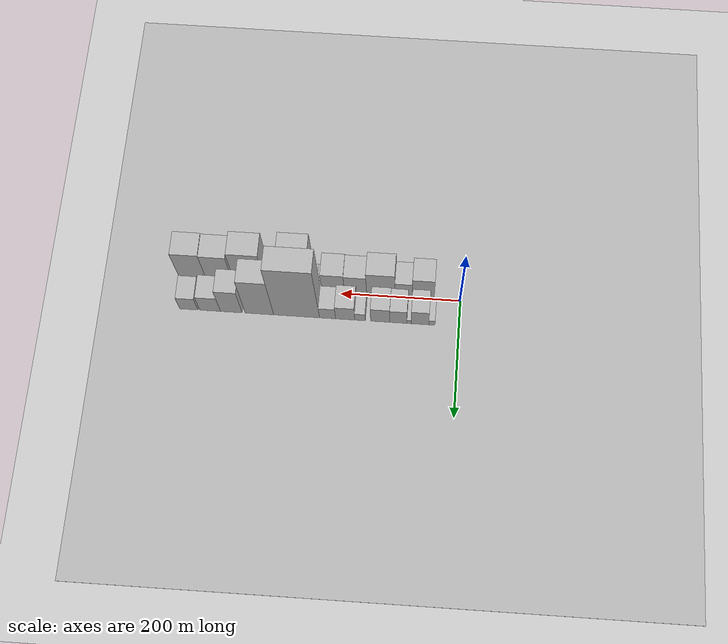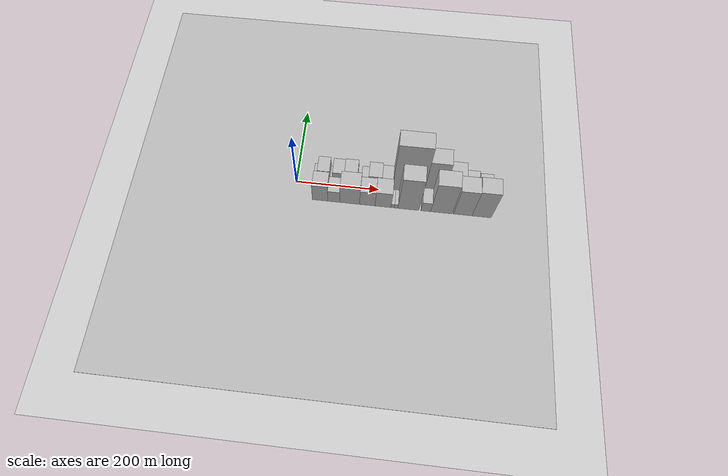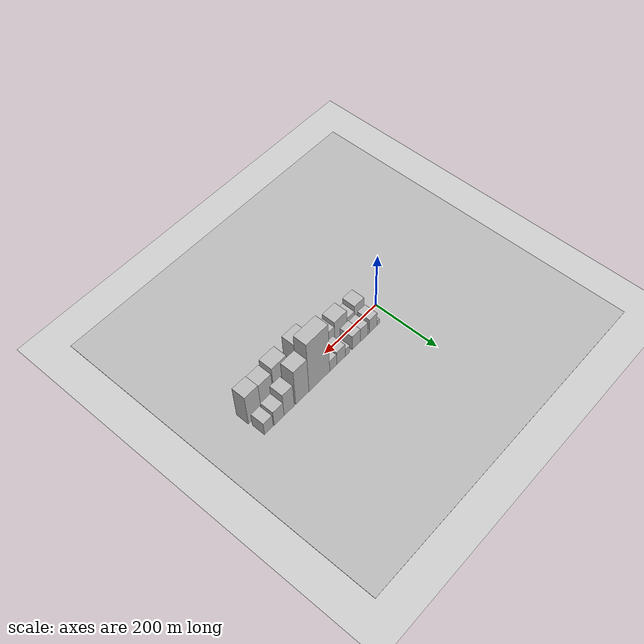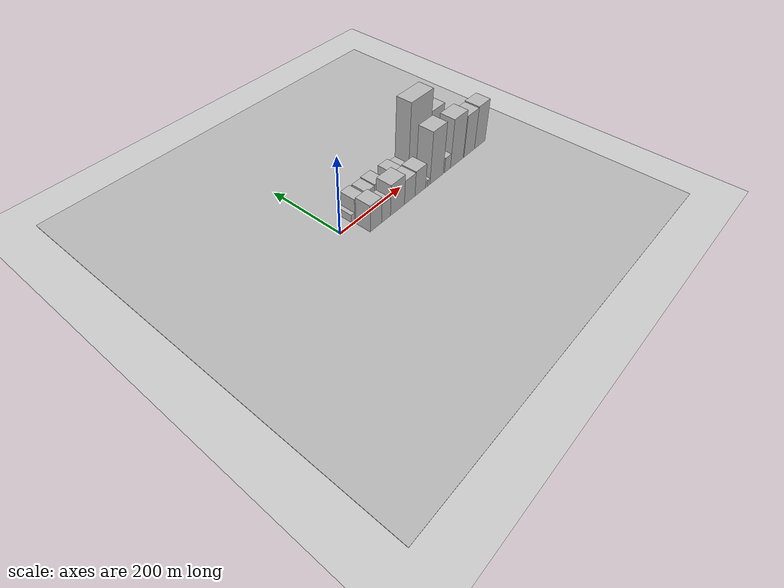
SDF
<?xml version="1.0" encoding="utf-8"?>

<sdf version="1.6">

   <world name="default">

      <gui fullscreen="0">

         <camera name="user_camera">

            <pose>-15 0 4.57585 0 0 0</pose>

            <view_controller>orbit</view_controller>

         </camera>

      </gui>

      <scene>

         <sky>

           <clouds>

             <speed>12</speed>

           </clouds>

         </sky>

         <ambient>0.4 0.4 0.4 1</ambient>

         <background>0.7 0.7 0.7 1</background>

         <shadows>1</shadows>

      </scene>

      <gravity>0 0 -9.8066</gravity>

      <magnetic_field>6e-06 2.3e-05 -4.2e-05</magnetic_field>

      <physics default="0" name="default_physics" type="ode">

         <ode>

            <solver>

               <type>quick</type>

               <iters>10</iters>

               <sor>1.0</sor>

               <use_dynamic_moi_rescaling>0</use_dynamic_moi_rescaling>

            </solver>

            <constraints>

               <cfm>0</cfm>

               <erp>0.2</erp>

               <contact_max_correcting_vel>100</contact_max_correcting_vel>

               <contact_surface_layer>0.001</contact_surface_layer>

            </constraints>

         </ode>

         <max_step_size>0.004</max_step_size>

         <real_time_factor>1</real_time_factor>

         <real_time_update_rate>250</real_time_update_rate>

      </physics>

      <light name="sun" type="directional">

         <cast_shadows>1</cast_shadows>

         <pose>0 0 10 0 0 0</pose>

         <diffuse>0.8 0.8 0.8 1</diffuse>

         <specular>0.2 0.2 0.2 1</specular>

         <attenuation>

            <range>1000</range>

            <constant>0.9</constant>

            <linear>0.01</linear>

            <quadratic>0.001</quadratic>

         </attenuation>

         <direction>-0.5 0.1 -0.9</direction>

      </light>

      <include>

         <name>ground_plane_1</name>

         <uri>model://HANNAS_ground_plane</uri>

         <pose>0 0 0  0 0 0</pose>

      </include>

      <include>

         <name>ground_plane_2</name>

         <uri>model://HANNAS_ground_plane</uri>

         <pose>100 0 0  0 0 0</pose>

      </include>

      <model name="building_1">

         <static>1</static>

         <pose frame="">45.1310 24.5000 0 0.000000 0.000000 1.570796</pose>

         <link name="link">

            <pose frame="">0 0 10.50 0 0 0</pose>

            <collision name="collision">

               <geometry>

                  <box>

                     <size>40.0000 10.2621 21.0000</size>

                  </box>

               </geometry>

               <max_contacts>10</max_contacts>

               <surface>

                  <contact>

                     <ode/>

                  </contact>

                  <bounce/>

                  <friction>

                     <torsional>

                        <ode/>

                     </torsional>

                     <ode/>

                  </friction>

               </surface>

            </collision>

            <visual name="visual">

               <cast_shadows>0</cast_shadows>

               <geometry>

                  <box>

                     <size>40.0000 10.2621 21.0000</size>

                  </box>

               </geometry>

               <material>

                  <script>

                     <uri>model://HANNAS_wall/materials/scripts</uri>

                     <uri>model://HANNAS_wall/materials/textures</uri>

                     <name>vrc/HANNAS_wall</name>

                  </script>

               </material>

            </visual>

            <self_collide>0</self_collide>

            <enable_wind>0</enable_wind>

            <kinematic>0</kinematic>

         </link>

      </model>

      <model name="building_2">

         <static>1</static>

         <pose frame="">64.9373 24.5000 0 0.000000 0.000000 1.570796</pose>

         <link name="link">

            <pose frame="">0 0 28.50 0 0 0</pose>

            <collision name="collision">

               <geometry>

                  <box>

                     <size>40.0000 29.3504 57.0000</size>

                  </box>

               </geometry>

               <max_contacts>10</max_contacts>

               <surface>

                  <contact>

                     <ode/>

                  </contact>

                  <bounce/>

                  <friction>

                     <torsional>

                        <ode/>

                     </torsional>

                     <ode/>

                  </friction>

               </surface>

            </collision>

            <visual name="visual">

               <cast_shadows>0</cast_shadows>

               <geometry>

                  <box>

                     <size>40.0000 29.3504 57.0000</size>

                  </box>

               </geometry>

               <material>

                  <script>

                     <uri>model://HANNAS_wall/materials/scripts</uri>

                     <uri>model://HANNAS_wall/materials/textures</uri>

                     <name>vrc/HANNAS_wall</name>

                  </script>

               </material>

            </visual>

            <self_collide>0</self_collide>

            <enable_wind>0</enable_wind>

            <kinematic>0</kinematic>

         </link>

      </model>

      <model name="building_3">

         <static>1</static>

         <pose frame="">83.1225 24.5000 0 0.000000 0.000000 1.570796</pose>

         <link name="link">

            <pose frame="">0 0 7.50 0 0 0</pose>

            <collision name="collision">

               <geometry>

                  <box>

                     <size>40.0000 7.0201 15.0000</size>

                  </box>

               </geometry>

               <max_contacts>10</max_contacts>

               <surface>

                  <contact>

                     <ode/>

                  </contact>

                  <bounce/>

                  <friction>

                     <torsional>

                        <ode/>

                     </torsional>

                     <ode/>

                  </friction>

               </surface>

            </collision>

            <visual name="visual">

               <cast_shadows>0</cast_shadows>

               <geometry>

                  <box>

                     <size>40.0000 7.0201 15.0000</size>

                  </box>

               </geometry>

               <material>

                  <script>

                     <uri>model://HANNAS_wall/materials/scripts</uri>

                     <uri>model://HANNAS_wall/materials/textures</uri>

                     <name>vrc/HANNAS_wall</name>

                  </script>

               </material>

            </visual>

            <self_collide>0</self_collide>

            <enable_wind>0</enable_wind>

            <kinematic>0</kinematic>

         </link>

      </model>

      <model name="building_4">

         <static>1</static>

         <pose frame="">100.7517 24.5000 0 0.000000 0.000000 1.570796</pose>

         <link name="link">

            <pose frame="">0 0 27.00 0 0 0</pose>

            <collision name="collision">

               <geometry>

                  <box>

                     <size>40.0000 28.2383 54.0000</size>

                  </box>

               </geometry>

               <max_contacts>10</max_contacts>

               <surface>

                  <contact>

                     <ode/>

                  </contact>

                  <bounce/>

                  <friction>

                     <torsional>

                        <ode/>

                     </torsional>

                     <ode/>

                  </friction>

               </surface>

            </collision>

            <visual name="visual">

               <cast_shadows>0</cast_shadows>

               <geometry>

                  <box>

                     <size>40.0000 28.2383 54.0000</size>

                  </box>

               </geometry>

               <material>

                  <script>

                     <uri>model://HANNAS_wall/materials/scripts</uri>

                     <uri>model://HANNAS_wall/materials/textures</uri>

                     <name>vrc/HANNAS_wall</name>

                  </script>

               </material>

            </visual>

            <self_collide>0</self_collide>

            <enable_wind>0</enable_wind>

            <kinematic>0</kinematic>

         </link>

      </model>

      <model name="building_5">

         <static>1</static>

         <pose frame="">130.7815 24.5000 0 0.000000 0.000000 1.570796</pose>

         <link name="link">

            <pose frame="">0 0 28.50 0 0 0</pose>

            <collision name="collision">

               <geometry>

                  <box>

                     <size>40.0000 31.8213 57.0000</size>

                  </box>

               </geometry>

               <max_contacts>10</max_contacts>

               <surface>

                  <contact>

                     <ode/>

                  </contact>

                  <bounce/>

                  <friction>

                     <torsional>

                        <ode/>

                     </torsional>

                     <ode/>

                  </friction>

               </surface>

            </collision>

            <visual name="visual">

               <cast_shadows>0</cast_shadows>

               <geometry>

                  <box>

                     <size>40.0000 31.8213 57.0000</size>

                  </box>

               </geometry>

               <material>

                  <script>

                     <uri>model://HANNAS_wall/materials/scripts</uri>

                     <uri>model://HANNAS_wall/materials/textures</uri>

                     <name>vrc/HANNAS_wall</name>

                  </script>

               </material>

            </visual>

            <self_collide>0</self_collide>

            <enable_wind>0</enable_wind>

            <kinematic>0</kinematic>

         </link>

      </model>

      <model name="building_6">

         <static>1</static>

         <pose frame="">164.3739 24.5000 0 0.000000 0.000000 1.570796</pose>

         <link name="link">

            <pose frame="">0 0 15.00 0 0 0</pose>

            <collision name="collision">

               <geometry>

                  <box>

                     <size>40.0000 17.3635 30.0000</size>

                  </box>

               </geometry>

               <max_contacts>10</max_contacts>

               <surface>

                  <contact>

                     <ode/>

                  </contact>

                  <bounce/>

                  <friction>

                     <torsional>

                        <ode/>

                     </torsional>

                     <ode/>

                  </friction>

               </surface>

            </collision>

            <visual name="visual">

               <cast_shadows>0</cast_shadows>

               <geometry>

                  <box>

                     <size>40.0000 17.3635 30.0000</size>

                  </box>

               </geometry>

               <material>

                  <script>

                     <uri>model://HANNAS_wall/materials/scripts</uri>

                     <uri>model://HANNAS_wall/materials/textures</uri>

                     <name>vrc/HANNAS_wall</name>

                  </script>

               </material>

            </visual>

            <self_collide>0</self_collide>

            <enable_wind>0</enable_wind>

            <kinematic>0</kinematic>

         </link>

      </model>

      <model name="building_7">

         <static>1</static>

         <pose frame="">189.0775 24.5000 0 0.000000 0.000000 1.570796</pose>

         <link name="link">

            <pose frame="">0 0 27.00 0 0 0</pose>

            <collision name="collision">

               <geometry>

                  <box>

                     <size>40.0000 32.0437 54.0000</size>

                  </box>

               </geometry>

               <max_contacts>10</max_contacts>

               <surface>

                  <contact>

                     <ode/>

                  </contact>

                  <bounce/>

                  <friction>

                     <torsional>

                        <ode/>

                     </torsional>

                     <ode/>

                  </friction>

               </surface>

            </collision>

            <visual name="visual">

               <cast_shadows>0</cast_shadows>

               <geometry>

                  <box>

                     <size>40.0000 32.0437 54.0000</size>

                  </box>

               </geometry>

               <material>

                  <script>

                     <uri>model://HANNAS_wall/materials/scripts</uri>

                     <uri>model://HANNAS_wall/materials/textures</uri>

                     <name>vrc/HANNAS_wall</name>

                  </script>

               </material>

            </visual>

            <self_collide>0</self_collide>

            <enable_wind>0</enable_wind>

            <kinematic>0</kinematic>

         </link>

      </model>

      <model name="building_8">

         <static>1</static>

         <pose frame="">218.5295 24.5000 0 0.000000 0.000000 1.570796</pose>

         <link name="link">

            <pose frame="">0 0 22.50 0 0 0</pose>

            <collision name="collision">

               <geometry>

                  <box>

                     <size>40.0000 26.8602 45.0000</size>

                  </box>

               </geometry>

               <max_contacts>10</max_contacts>

               <surface>

                  <contact>

                     <ode/>

                  </contact>

                  <bounce/>

                  <friction>

                     <torsional>

                        <ode/>

                     </torsional>

                     <ode/>

                  </friction>

               </surface>

            </collision>

            <visual name="visual">

               <cast_shadows>0</cast_shadows>

               <geometry>

                  <box>

                     <size>40.0000 26.8602 45.0000</size>

                  </box>

               </geometry>

               <material>

                  <script>

                     <uri>model://HANNAS_wall/materials/scripts</uri>

                     <uri>model://HANNAS_wall/materials/textures</uri>

                     <name>vrc/HANNAS_wall</name>

                  </script>

               </material>

            </visual>

            <self_collide>0</self_collide>

            <enable_wind>0</enable_wind>

            <kinematic>0</kinematic>

         </link>

      </model>

      <model name="building_9">

         <static>1</static>

         <pose frame="">270.1884 24.5000 0 0.000000 0.000000 1.570796</pose>

         <link name="link">

            <pose frame="">0 0 102.00 0 0 0</pose>

            <collision name="collision">

               <geometry>

                  <box>

                     <size>40.0000 76.4577 204.0000</size>

                  </box>

               </geometry>

               <max_contacts>10</max_contacts>

               <surface>

                  <contact>

                     <ode/>

                  </contact>

                  <bounce/>

                  <friction>

                     <torsional>

                        <ode/>

                     </torsional>

                     <ode/>

                  </friction>

               </surface>

            </collision>

            <visual name="visual">

               <cast_shadows>0</cast_shadows>

               <geometry>

                  <box>

                     <size>40.0000 76.4577 204.0000</size>

                  </box>

               </geometry>

               <material>

                  <script>

                     <uri>model://HANNAS_wall/materials/scripts</uri>

                     <uri>model://HANNAS_wall/materials/textures</uri>

                     <name>vrc/HANNAS_wall</name>

                  </script>

               </material>

            </visual>

            <self_collide>0</self_collide>

            <enable_wind>0</enable_wind>

            <kinematic>0</kinematic>

         </link>

      </model>

      <model name="building_10">

         <static>1</static>

         <pose frame="">332.2457 24.5000 0 0.000000 0.000000 1.570796</pose>

         <link name="link">

            <pose frame="">0 0 72.00 0 0 0</pose>

            <collision name="collision">

               <geometry>

                  <box>

                     <size>40.0000 47.6568 144.0000</size>

                  </box>

               </geometry>

               <max_contacts>10</max_contacts>

               <surface>

                  <contact>

                     <ode/>

                  </contact>

                  <bounce/>

                  <friction>

                     <torsional>

                        <ode/>

                     </torsional>

                     <ode/>

                  </friction>

               </surface>

            </collision>

            <visual name="visual">

               <cast_shadows>0</cast_shadows>

               <geometry>

                  <box>

                     <size>40.0000 47.6568 144.0000</size>

                  </box>

               </geometry>

               <material>

                  <script>

                     <uri>model://HANNAS_wall/materials/scripts</uri>

                     <uri>model://HANNAS_wall/materials/textures</uri>

                     <name>vrc/HANNAS_wall</name>

                  </script>

               </material>

            </visual>

            <self_collide>0</self_collide>

            <enable_wind>0</enable_wind>

            <kinematic>0</kinematic>

         </link>

      </model>

      <model name="building_11">

         <static>1</static>

         <pose frame="">379.1722 24.5000 0 0.000000 0.000000 1.570796</pose>

         <link name="link">

            <pose frame="">0 0 46.50 0 0 0</pose>

            <collision name="collision">

               <geometry>

                  <box>

                     <size>40.0000 36.1962 93.0000</size>

                  </box>

               </geometry>

               <max_contacts>10</max_contacts>

               <surface>

                  <contact>

                     <ode/>

                  </contact>

                  <bounce/>

                  <friction>

                     <torsional>

                        <ode/>

                     </torsional>

                     <ode/>

                  </friction>

               </surface>

            </collision>

            <visual name="visual">

               <cast_shadows>0</cast_shadows>

               <geometry>

                  <box>

                     <size>40.0000 36.1962 93.0000</size>

                  </box>

               </geometry>

               <material>

                  <script>

                     <uri>model://HANNAS_wall/materials/scripts</uri>

                     <uri>model://HANNAS_wall/materials/textures</uri>

                     <name>vrc/HANNAS_wall</name>

                  </script>

               </material>

            </visual>

            <self_collide>0</self_collide>

            <enable_wind>0</enable_wind>

            <kinematic>0</kinematic>

         </link>

      </model>

      <model name="building_12">

         <static>1</static>

         <pose frame="">414.6842 24.5000 0 0.000000 0.000000 1.570796</pose>

         <link name="link">

            <pose frame="">0 0 30.00 0 0 0</pose>

            <collision name="collision">

               <geometry>

                  <box>

                     <size>40.0000 34.8278 60.0000</size>

                  </box>

               </geometry>

               <max_contacts>10</max_contacts>

               <surface>

                  <contact>

                     <ode/>

                  </contact>

                  <bounce/>

                  <friction>

                     <torsional>

                        <ode/>

                     </torsional>

                     <ode/>

                  </friction>

               </surface>

            </collision>

            <visual name="visual">

               <cast_shadows>0</cast_shadows>

               <geometry>

                  <box>

                     <size>40.0000 34.8278 60.0000</size>

                  </box>

               </geometry>

               <material>

                  <script>

                     <uri>model://HANNAS_wall/materials/scripts</uri>

                     <uri>model://HANNAS_wall/materials/textures</uri>

                     <name>vrc/HANNAS_wall</name>

                  </script>

               </material>

            </visual>

            <self_collide>0</self_collide>

            <enable_wind>0</enable_wind>

            <kinematic>0</kinematic>

         </link>

      </model>

      <model name="building_13">

         <static>1</static>

         <pose frame="">450.3041 24.5000 0 0.000000 0.000000 1.570796</pose>

         <link name="link">

            <pose frame="">0 0 25.50 0 0 0</pose>

            <collision name="collision">

               <geometry>

                  <box>

                     <size>40.0000 30.4120 51.0000</size>

                  </box>

               </geometry>

               <max_contacts>10</max_contacts>

               <surface>

                  <contact>

                     <ode/>

                  </contact>

                  <bounce/>

                  <friction>

                     <torsional>

                        <ode/>

                     </torsional>

                     <ode/>

                  </friction>

               </surface>

            </collision>

            <visual name="visual">

               <cast_shadows>0</cast_shadows>

               <geometry>

                  <box>

                     <size>40.0000 30.4120 51.0000</size>

                  </box>

               </geometry>

               <material>

                  <script>

                     <uri>model://HANNAS_wall/materials/scripts</uri>

                     <uri>model://HANNAS_wall/materials/textures</uri>

                     <name>vrc/HANNAS_wall</name>

                  </script>

               </material>

            </visual>

            <self_collide>0</self_collide>

            <enable_wind>0</enable_wind>

            <kinematic>0</kinematic>

         </link>

      </model>

      <model name="building_14">

         <static>1</static>

         <pose frame="">62.4474 -24.5000 0 0.000000 0.000000 1.570796</pose>

         <link name="link">

            <pose frame="">0 0 36.00 0 0 0</pose>

            <collision name="collision">

               <geometry>

                  <box>

                     <size>40.0000 36.8948 72.0000</size>

                  </box>

               </geometry>

               <max_contacts>10</max_contacts>

               <surface>

                  <contact>

                     <ode/>

                  </contact>

                  <bounce/>

                  <friction>

                     <torsional>

                        <ode/>

                     </torsional>

                     <ode/>

                  </friction>

               </surface>

            </collision>

            <visual name="visual">

               <cast_shadows>0</cast_shadows>

               <geometry>

                  <box>

                     <size>40.0000 36.8948 72.0000</size>

                  </box>

               </geometry>

               <material>

                  <script>

                     <uri>model://HANNAS_wall/materials/scripts</uri>

                     <uri>model://HANNAS_wall/materials/textures</uri>

                     <name>vrc/HANNAS_wall</name>

                  </script>

               </material>

            </visual>

            <self_collide>0</self_collide>

            <enable_wind>0</enable_wind>

            <kinematic>0</kinematic>

         </link>

      </model>

      <model name="building_15">

         <static>1</static>

         <pose frame="">95.4344 -24.5000 0 0.000000 0.000000 1.570796</pose>

         <link name="link">

            <pose frame="">0 0 25.50 0 0 0</pose>

            <collision name="collision">

               <geometry>

                  <box>

                     <size>40.0000 29.0793 51.0000</size>

                  </box>

               </geometry>

               <max_contacts>10</max_contacts>

               <surface>

                  <contact>

                     <ode/>

                  </contact>

                  <bounce/>

                  <friction>

                     <torsional>

                        <ode/>

                     </torsional>

                     <ode/>

                  </friction>

               </surface>

            </collision>

            <visual name="visual">

               <cast_shadows>0</cast_shadows>

               <geometry>

                  <box>

                     <size>40.0000 29.0793 51.0000</size>

                  </box>

               </geometry>

               <material>

                  <script>

                     <uri>model://HANNAS_wall/materials/scripts</uri>

                     <uri>model://HANNAS_wall/materials/textures</uri>

                     <name>vrc/HANNAS_wall</name>

                  </script>

               </material>

            </visual>

            <self_collide>0</self_collide>

            <enable_wind>0</enable_wind>

            <kinematic>0</kinematic>

         </link>

      </model>

      <model name="building_16">

         <static>1</static>

         <pose frame="">133.6368 -24.5000 0 0.000000 0.000000 1.570796</pose>

         <link name="link">

            <pose frame="">0 0 42.00 0 0 0</pose>

            <collision name="collision">

               <geometry>

                  <box>

                     <size>40.0000 47.3255 84.0000</size>

                  </box>

               </geometry>

               <max_contacts>10</max_contacts>

               <surface>

                  <contact>

                     <ode/>

                  </contact>

                  <bounce/>

                  <friction>

                     <torsional>

                        <ode/>

                     </torsional>

                     <ode/>

                  </friction>

               </surface>

            </collision>

            <visual name="visual">

               <cast_shadows>0</cast_shadows>

               <geometry>

                  <box>

                     <size>40.0000 47.3255 84.0000</size>

                  </box>

               </geometry>

               <material>

                  <script>

                     <uri>model://HANNAS_wall/materials/scripts</uri>

                     <uri>model://HANNAS_wall/materials/textures</uri>

                     <name>vrc/HANNAS_wall</name>

                  </script>

               </material>

            </visual>

            <self_collide>0</self_collide>

            <enable_wind>0</enable_wind>

            <kinematic>0</kinematic>

         </link>

      </model>

      <model name="building_17">

         <static>1</static>

         <pose frame="">175.8674 -24.5000 0 0.000000 0.000000 1.570796</pose>

         <link name="link">

            <pose frame="">0 0 33.00 0 0 0</pose>

            <collision name="collision">

               <geometry>

                  <box>

                     <size>40.0000 37.1358 66.0000</size>

                  </box>

               </geometry>

               <max_contacts>10</max_contacts>

               <surface>

                  <contact>

                     <ode/>

                  </contact>

                  <bounce/>

                  <friction>

                     <torsional>

                        <ode/>

                     </torsional>

                     <ode/>

                  </friction>

               </surface>

            </collision>

            <visual name="visual">

               <cast_shadows>0</cast_shadows>

               <geometry>

                  <box>

                     <size>40.0000 37.1358 66.0000</size>

                  </box>

               </geometry>

               <material>

                  <script>

                     <uri>model://HANNAS_wall/materials/scripts</uri>

                     <uri>model://HANNAS_wall/materials/textures</uri>

                     <name>vrc/HANNAS_wall</name>

                  </script>

               </material>

            </visual>

            <self_collide>0</self_collide>

            <enable_wind>0</enable_wind>

            <kinematic>0</kinematic>

         </link>

      </model>

      <model name="building_18">

         <static>1</static>

         <pose frame="">213.4984 -24.5000 0 0.000000 0.000000 1.570796</pose>

         <link name="link">

            <pose frame="">0 0 34.50 0 0 0</pose>

            <collision name="collision">

               <geometry>

                  <box>

                     <size>40.0000 38.1262 69.0000</size>

                  </box>

               </geometry>

               <max_contacts>10</max_contacts>

               <surface>

                  <contact>

                     <ode/>

                  </contact>

                  <bounce/>

                  <friction>

                     <torsional>

                        <ode/>

                     </torsional>

                     <ode/>

                  </friction>

               </surface>

            </collision>

            <visual name="visual">

               <cast_shadows>0</cast_shadows>

               <geometry>

                  <box>

                     <size>40.0000 38.1262 69.0000</size>

                  </box>

               </geometry>

               <material>

                  <script>

                     <uri>model://HANNAS_wall/materials/scripts</uri>

                     <uri>model://HANNAS_wall/materials/textures</uri>

                     <name>vrc/HANNAS_wall</name>

                  </script>

               </material>

            </visual>

            <self_collide>0</self_collide>

            <enable_wind>0</enable_wind>

            <kinematic>0</kinematic>

         </link>

      </model>

      <model name="building_19">

         <static>1</static>

         <pose frame="">236.4675 -24.5000 0 0.000000 0.000000 1.570796</pose>

         <link name="link">

            <pose frame="">0 0 9.00 0 0 0</pose>

            <collision name="collision">

               <geometry>

                  <box>

                     <size>40.0000 7.8120 18.0000</size>

                  </box>

               </geometry>

               <max_contacts>10</max_contacts>

               <surface>

                  <contact>

                     <ode/>

                  </contact>

                  <bounce/>

                  <friction>

                     <torsional>

                        <ode/>

                     </torsional>

                     <ode/>

                  </friction>

               </surface>

            </collision>

            <visual name="visual">

               <cast_shadows>0</cast_shadows>

               <geometry>

                  <box>

                     <size>40.0000 7.8120 18.0000</size>

                  </box>

               </geometry>

               <material>

                  <script>

                     <uri>model://HANNAS_wall/materials/scripts</uri>

                     <uri>model://HANNAS_wall/materials/textures</uri>

                     <name>vrc/HANNAS_wall</name>

                  </script>

               </material>

            </visual>

            <self_collide>0</self_collide>

            <enable_wind>0</enable_wind>

            <kinematic>0</kinematic>

         </link>

      </model>

      <model name="building_20">

         <static>1</static>

         <pose frame="">244.5960 -24.5000 0 0.000000 0.000000 1.570796</pose>

         <link name="link">

            <pose frame="">0 0 9.00 0 0 0</pose>

            <collision name="collision">

               <geometry>

                  <box>

                     <size>40.0000 8.4450 18.0000</size>

                  </box>

               </geometry>

               <max_contacts>10</max_contacts>

               <surface>

                  <contact>

                     <ode/>

                  </contact>

                  <bounce/>

                  <friction>

                     <torsional>

                        <ode/>

                     </torsional>

                     <ode/>

                  </friction>

               </surface>

            </collision>

            <visual name="visual">

               <cast_shadows>0</cast_shadows>

               <geometry>

                  <box>

                     <size>40.0000 8.4450 18.0000</size>

                  </box>

               </geometry>

               <material>

                  <script>

                     <uri>model://HANNAS_wall/materials/scripts</uri>

                     <uri>model://HANNAS_wall/materials/textures</uri>

                     <name>vrc/HANNAS_wall</name>

                  </script>

               </material>

            </visual>

            <self_collide>0</self_collide>

            <enable_wind>0</enable_wind>

            <kinematic>0</kinematic>

         </link>

      </model>

      <model name="building_21">

         <static>1</static>

         <pose frame="">273.9065 -24.5000 0 0.000000 0.000000 1.570796</pose>

         <link name="link">

            <pose frame="">0 0 72.00 0 0 0</pose>

            <collision name="collision">

               <geometry>

                  <box>

                     <size>40.0000 50.1760 144.0000</size>

                  </box>

               </geometry>

               <max_contacts>10</max_contacts>

               <surface>

                  <contact>

                     <ode/>

                  </contact>

                  <bounce/>

                  <friction>

                     <torsional>

                        <ode/>

                     </torsional>

                     <ode/>

                  </friction>

               </surface>

            </collision>

            <visual name="visual">

               <cast_shadows>0</cast_shadows>

               <geometry>

                  <box>

                     <size>40.0000 50.1760 144.0000</size>

                  </box>

               </geometry>

               <material>

                  <script>

                     <uri>model://HANNAS_wall/materials/scripts</uri>

                     <uri>model://HANNAS_wall/materials/textures</uri>

                     <name>vrc/HANNAS_wall</name>

                  </script>

               </material>

            </visual>

            <self_collide>0</self_collide>

            <enable_wind>0</enable_wind>

            <kinematic>0</kinematic>

         </link>

      </model>

      <model name="building_22">

         <static>1</static>

         <pose frame="">315.4921 -24.5000 0 0.000000 0.000000 1.570796</pose>

         <link name="link">

            <pose frame="">0 0 21.00 0 0 0</pose>

            <collision name="collision">

               <geometry>

                  <box>

                     <size>40.0000 22.9950 42.0000</size>

                  </box>

               </geometry>

               <max_contacts>10</max_contacts>

               <surface>

                  <contact>

                     <ode/>

                  </contact>

                  <bounce/>

                  <friction>

                     <torsional>

                        <ode/>

                     </torsional>

                     <ode/>

                  </friction>

               </surface>

            </collision>

            <visual name="visual">

               <cast_shadows>0</cast_shadows>

               <geometry>

                  <box>

                     <size>40.0000 22.9950 42.0000</size>

                  </box>

               </geometry>

               <material>

                  <script>

                     <uri>model://HANNAS_wall/materials/scripts</uri>

                     <uri>model://HANNAS_wall/materials/textures</uri>

                     <name>vrc/HANNAS_wall</name>

                  </script>

               </material>

            </visual>

            <self_collide>0</self_collide>

            <enable_wind>0</enable_wind>

            <kinematic>0</kinematic>

         </link>

      </model>

      <model name="building_23">

         <static>1</static>

         <pose frame="">352.4465 -24.5000 0 0.000000 0.000000 1.570796</pose>

         <link name="link">

            <pose frame="">0 0 67.50 0 0 0</pose>

            <collision name="collision">

               <geometry>

                  <box>

                     <size>40.0000 50.9138 135.0000</size>

                  </box>

               </geometry>

               <max_contacts>10</max_contacts>

               <surface>

                  <contact>

                     <ode/>

                  </contact>

                  <bounce/>

                  <friction>

                     <torsional>

                        <ode/>

                     </torsional>

                     <ode/>

                  </friction>

               </surface>

            </collision>

            <visual name="visual">

               <cast_shadows>0</cast_shadows>

               <geometry>

                  <box>

                     <size>40.0000 50.9138 135.0000</size>

                  </box>

               </geometry>

               <material>

                  <script>

                     <uri>model://HANNAS_wall/materials/scripts</uri>

                     <uri>model://HANNAS_wall/materials/textures</uri>

                     <name>vrc/HANNAS_wall</name>

                  </script>

               </material>

            </visual>

            <self_collide>0</self_collide>

            <enable_wind>0</enable_wind>

            <kinematic>0</kinematic>

         </link>

      </model>

      <model name="building_24">

         <static>1</static>

         <pose frame="">402.7213 -24.5000 0 0.000000 0.000000 1.570796</pose>

         <link name="link">

            <pose frame="">0 0 58.50 0 0 0</pose>

            <collision name="collision">

               <geometry>

                  <box>

                     <size>40.0000 43.6358 117.0000</size>

                  </box>

               </geometry>

               <max_contacts>10</max_contacts>

               <surface>

                  <contact>

                     <ode/>

                  </contact>

                  <bounce/>

                  <friction>

                     <torsional>

                        <ode/>

                     </torsional>

                     <ode/>

                  </friction>

               </surface>

            </collision>

            <visual name="visual">

               <cast_shadows>0</cast_shadows>

               <geometry>

                  <box>

                     <size>40.0000 43.6358 117.0000</size>

                  </box>

               </geometry>

               <material>

                  <script>

                     <uri>model://HANNAS_wall/materials/scripts</uri>

                     <uri>model://HANNAS_wall/materials/textures</uri>

                     <name>vrc/HANNAS_wall</name>

                  </script>

               </material>

            </visual>

            <self_collide>0</self_collide>

            <enable_wind>0</enable_wind>

            <kinematic>0</kinematic>

         </link>

      </model>

      <model name="building_25">

         <static>1</static>

         <pose frame="">447.1292 -24.5000 0 0.000000 0.000000 1.570796</pose>

         <link name="link">

            <pose frame="">0 0 60.00 0 0 0</pose>

            <collision name="collision">

               <geometry>

                  <box>

                     <size>40.0000 45.1800 120.0000</size>

                  </box>

               </geometry>

               <max_contacts>10</max_contacts>

               <surface>

                  <contact>

                     <ode/>

                  </contact>

                  <bounce/>

                  <friction>

                     <torsional>

                        <ode/>

                     </torsional>

                     <ode/>

                  </friction>

               </surface>

            </collision>

            <visual name="visual">

               <cast_shadows>0</cast_shadows>

               <geometry>

                  <box>

                     <size>40.0000 45.1800 120.0000</size>

                  </box>

               </geometry>

               <material>

                  <script>

                     <uri>model://HANNAS_wall/materials/scripts</uri>

                     <uri>model://HANNAS_wall/materials/textures</uri>

                     <name>vrc/HANNAS_wall</name>

                  </script>

               </material>

            </visual>

            <self_collide>0</self_collide>

            <enable_wind>0</enable_wind>

            <kinematic>0</kinematic>

         </link>

      </model>

   </world>

</sdf>

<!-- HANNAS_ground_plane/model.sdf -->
<sdf version="1.4">
<model name="HANNAS_ground_plane">
  <static>true</static>
    <link name="link">
      <collision name="collision">
        <geometry>
          <plane>
            <normal>0 0 1</normal>
            <size>1000 1000</size>
          </plane>
        </geometry>
        <surface>
          <friction>
            <ode>
              <mu>100</mu>
              <mu2>50</mu2>
            </ode>
          </friction>
        </surface>
      </collision>
      <visual name="visual">
        <cast_shadows>false</cast_shadows>
        <geometry>
          <plane>
            <normal>0 0 1</normal>
            <size>1000 1000</size>
          </plane>
        </geometry>
        <material>
          <script>
            <uri>model://HANNAS_ground_plane/materials/scripts/HANNAS_ground_plane.material</uri>
	    <uri>model://HANNAS_ground_plane/materials/textures</uri>
            <name>HANNASGroundPlane/Image</name>
          </script>
        </material>
      </visual>
    </link>
  </model>
</sdf>
